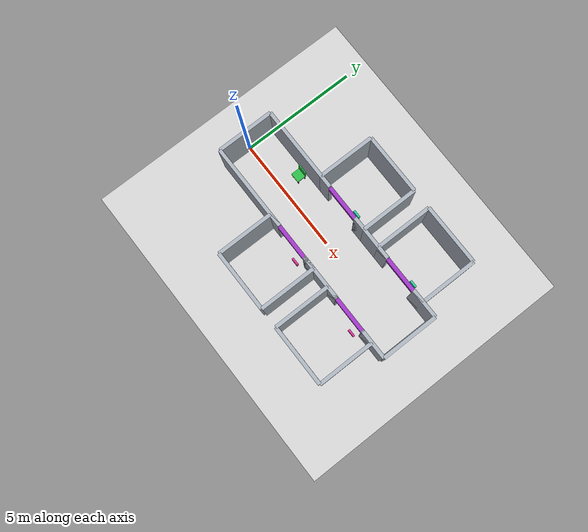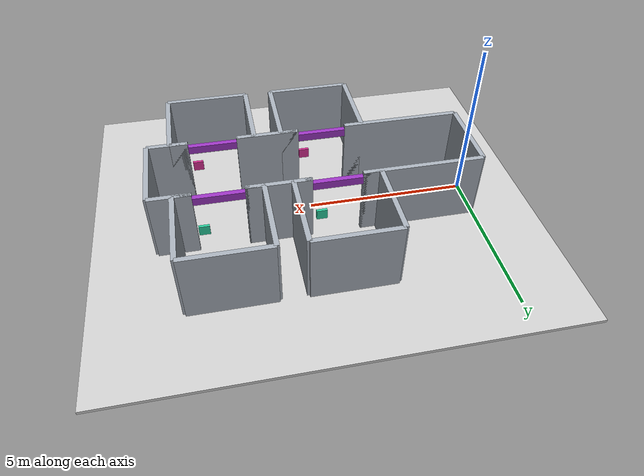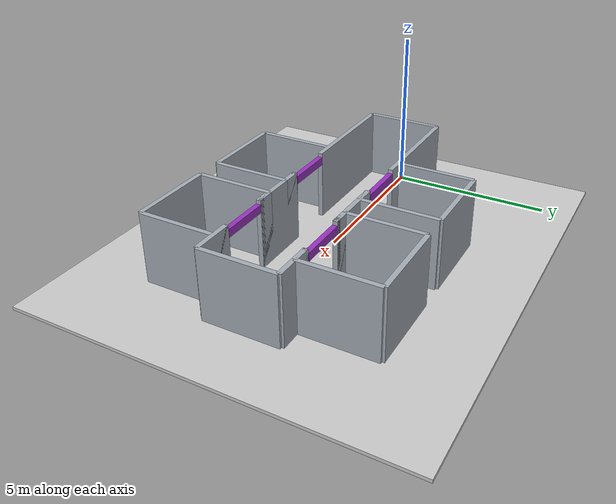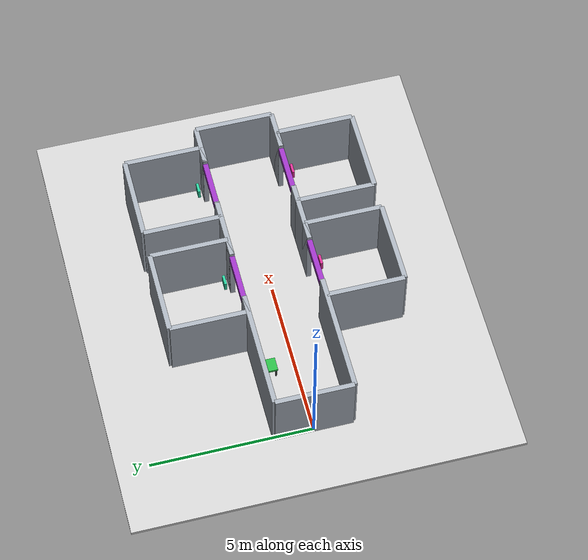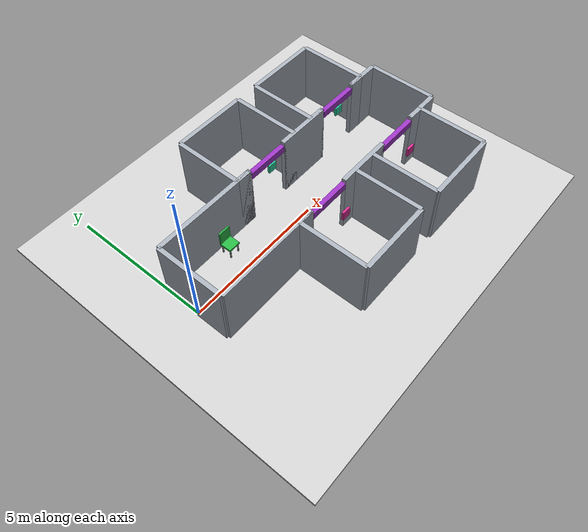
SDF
<sdf version="1.9">
  <world name="default">
    <plugin filename="gz-sim-physics-system" name="gz::sim::systems::Physics" />
    <plugin filename="gz-sim-user-commands-system" name="gz::sim::systems::UserCommands" />
    <plugin filename="gz-sim-sensors-system" name="gz::sim::systems::Sensors">
      <render_engine>ogre2</render_engine>
    </plugin>
    <plugin filename="gz-sim-imu-system" name="gz::sim::systems::Imu" />
    <plugin filename="gz-sim-contact-system" name="gz::sim::systems::Contact" />
    <physics name="3ms" type="ode">
      <max_step_size>0.003</max_step_size>
      <real_time_factor>1</real_time_factor>
    </physics>
    <light name="sun" type="directional">
      <pose>0 0 10 0 0 0</pose>
      <diffuse>0.9 0.9 0.9 1</diffuse>
      <direction>-0.5 0.1 -0.9</direction>
    </light>
    <model name="ground_plane">
      <static>true</static>
      <pose>4.95 0 -0.05 0 0 0</pose>
      <link name="body">
        <collision name="collision">
          <geometry>
            <box>
              <size>13.9 12 0.1</size>
            </box>
          </geometry>
        </collision>
        <visual name="visual">
          <geometry>
            <box>
              <size>13.9 12 0.1</size>
            </box>
          </geometry>
          <material>
            <ambient>0.8 0.8 0.8 1</ambient>
            <diffuse>0.8 0.8 0.8 1</diffuse>
          </material>
        </visual>
      </link>
    </model>
    <model name="start_wall">
      <static>true</static>
      <pose>0 0 1.1 0 0 0</pose>
      <link name="body">
        <collision name="collision">
          <geometry>
            <box>
              <size>0.15 2.4 2.2</size>
            </box>
          </geometry>
        </collision>
        <visual name="visual">
          <geometry>
            <box>
              <size>0.15 2.4 2.2</size>
            </box>
          </geometry>
          <material>
            <ambient>0.65 0.68 0.72 1</ambient>
            <diffuse>0.65 0.68 0.72 1</diffuse>
          </material>
        </visual>
      </link>
    </model>
    <model name="end_wall">
      <static>true</static>
      <pose>9.9 0 1.1 0 0 0</pose>
      <link name="body">
        <collision name="collision">
          <geometry>
            <box>
              <size>0.15 2.4 2.2</size>
            </box>
          </geometry>
        </collision>
        <visual name="visual">
          <geometry>
            <box>
              <size>0.15 2.4 2.2</size>
            </box>
          </geometry>
          <material>
            <ambient>0.65 0.68 0.72 1</ambient>
            <diffuse>0.65 0.68 0.72 1</diffuse>
          </material>
        </visual>
      </link>
    </model>
    <model name="hall_-1_1">
      <static>true</static>
      <pose>1.85 -1.2 1.1 0 0 0</pose>
      <link name="body">
        <collision name="collision">
          <geometry>
            <box>
              <size>3.7 0.15 2.2</size>
            </box>
          </geometry>
        </collision>
        <visual name="visual">
          <geometry>
            <box>
              <size>3.7 0.15 2.2</size>
            </box>
          </geometry>
          <material>
            <ambient>0.65 0.68 0.72 1</ambient>
            <diffuse>0.65 0.68 0.72 1</diffuse>
          </material>
        </visual>
      </link>
    </model>
    <model name="room_-1_1_-1">
      <static>true</static>
      <pose>3.1500000000000004 -2.4 1.1 0 0 0</pose>
      <link name="body">
        <collision name="collision">
          <geometry>
            <box>
              <size>0.15 2.4 2.2</size>
            </box>
          </geometry>
        </collision>
        <visual name="visual">
          <geometry>
            <box>
              <size>0.15 2.4 2.2</size>
            </box>
          </geometry>
          <material>
            <ambient>0.65 0.68 0.72 1</ambient>
            <diffuse>0.65 0.68 0.72 1</diffuse>
          </material>
        </visual>
      </link>
    </model>
    <model name="room_-1_1_1">
      <static>true</static>
      <pose>5.75 -2.4 1.1 0 0 0</pose>
      <link name="body">
        <collision name="collision">
          <geometry>
            <box>
              <size>0.15 2.4 2.2</size>
            </box>
          </geometry>
        </collision>
        <visual name="visual">
          <geometry>
            <box>
              <size>0.15 2.4 2.2</size>
            </box>
          </geometry>
          <material>
            <ambient>0.65 0.68 0.72 1</ambient>
            <diffuse>0.65 0.68 0.72 1</diffuse>
          </material>
        </visual>
      </link>
    </model>
    <model name="room_end_-1_1">
      <static>true</static>
      <pose>4.45 -3.5999999999999996 1.1 0 0 0</pose>
      <link name="body">
        <collision name="collision">
          <geometry>
            <box>
              <size>2.6 0.15 2.2</size>
            </box>
          </geometry>
        </collision>
        <visual name="visual">
          <geometry>
            <box>
              <size>2.6 0.15 2.2</size>
            </box>
          </geometry>
          <material>
            <ambient>0.65 0.68 0.72 1</ambient>
            <diffuse>0.65 0.68 0.72 1</diffuse>
          </material>
        </visual>
      </link>
    </model>
    <model name="jamb_-1_1_-1">
      <static>true</static>
      <pose>3.4250000000000003 -1.2 1.1 0 0 0</pose>
      <link name="body">
        <collision name="collision">
          <geometry>
            <box>
              <size>0.55 0.15 2.2</size>
            </box>
          </geometry>
        </collision>
        <visual name="visual">
          <geometry>
            <box>
              <size>0.55 0.15 2.2</size>
            </box>
          </geometry>
          <material>
            <ambient>0.65 0.68 0.72 1</ambient>
            <diffuse>0.65 0.68 0.72 1</diffuse>
          </material>
        </visual>
      </link>
    </model>
    <model name="jamb_-1_1_1">
      <static>true</static>
      <pose>5.475 -1.2 1.1 0 0 0</pose>
      <link name="body">
        <collision name="collision">
          <geometry>
            <box>
              <size>0.55 0.15 2.2</size>
            </box>
          </geometry>
        </collision>
        <visual name="visual">
          <geometry>
            <box>
              <size>0.55 0.15 2.2</size>
            </box>
          </geometry>
          <material>
            <ambient>0.65 0.68 0.72 1</ambient>
            <diffuse>0.65 0.68 0.72 1</diffuse>
          </material>
        </visual>
      </link>
    </model>
    <model name="hall_-1_2">
      <static>true</static>
      <pose>6.175000000000001 -1.2 1.1 0 0 0</pose>
      <link name="body">
        <collision name="collision">
          <geometry>
            <box>
              <size>1.9500000000000002 0.15 2.2</size>
            </box>
          </geometry>
        </collision>
        <visual name="visual">
          <geometry>
            <box>
              <size>1.9500000000000002 0.15 2.2</size>
            </box>
          </geometry>
          <material>
            <ambient>0.65 0.68 0.72 1</ambient>
            <diffuse>0.65 0.68 0.72 1</diffuse>
          </material>
        </visual>
      </link>
    </model>
    <model name="room_-1_2_-1">
      <static>true</static>
      <pose>6.6000000000000005 -2.4 1.1 0 0 0</pose>
      <link name="body">
        <collision name="collision">
          <geometry>
            <box>
              <size>0.15 2.4 2.2</size>
            </box>
          </geometry>
        </collision>
        <visual name="visual">
          <geometry>
            <box>
              <size>0.15 2.4 2.2</size>
            </box>
          </geometry>
          <material>
            <ambient>0.65 0.68 0.72 1</ambient>
            <diffuse>0.65 0.68 0.72 1</diffuse>
          </material>
        </visual>
      </link>
    </model>
    <model name="room_-1_2_1">
      <static>true</static>
      <pose>9.200000000000001 -2.4 1.1 0 0 0</pose>
      <link name="body">
        <collision name="collision">
          <geometry>
            <box>
              <size>0.15 2.4 2.2</size>
            </box>
          </geometry>
        </collision>
        <visual name="visual">
          <geometry>
            <box>
              <size>0.15 2.4 2.2</size>
            </box>
          </geometry>
          <material>
            <ambient>0.65 0.68 0.72 1</ambient>
            <diffuse>0.65 0.68 0.72 1</diffuse>
          </material>
        </visual>
      </link>
    </model>
    <model name="room_end_-1_2">
      <static>true</static>
      <pose>7.9 -3.5999999999999996 1.1 0 0 0</pose>
      <link name="body">
        <collision name="collision">
          <geometry>
            <box>
              <size>2.6 0.15 2.2</size>
            </box>
          </geometry>
        </collision>
        <visual name="visual">
          <geometry>
            <box>
              <size>2.6 0.15 2.2</size>
            </box>
          </geometry>
          <material>
            <ambient>0.65 0.68 0.72 1</ambient>
            <diffuse>0.65 0.68 0.72 1</diffuse>
          </material>
        </visual>
      </link>
    </model>
    <model name="jamb_-1_2_-1">
      <static>true</static>
      <pose>6.875 -1.2 1.1 0 0 0</pose>
      <link name="body">
        <collision name="collision">
          <geometry>
            <box>
              <size>0.55 0.15 2.2</size>
            </box>
          </geometry>
        </collision>
        <visual name="visual">
          <geometry>
            <box>
              <size>0.55 0.15 2.2</size>
            </box>
          </geometry>
          <material>
            <ambient>0.65 0.68 0.72 1</ambient>
            <diffuse>0.65 0.68 0.72 1</diffuse>
          </material>
        </visual>
      </link>
    </model>
    <model name="jamb_-1_2_1">
      <static>true</static>
      <pose>8.925 -1.2 1.1 0 0 0</pose>
      <link name="body">
        <collision name="collision">
          <geometry>
            <box>
              <size>0.55 0.15 2.2</size>
            </box>
          </geometry>
        </collision>
        <visual name="visual">
          <geometry>
            <box>
              <size>0.55 0.15 2.2</size>
            </box>
          </geometry>
          <material>
            <ambient>0.65 0.68 0.72 1</ambient>
            <diffuse>0.65 0.68 0.72 1</diffuse>
          </material>
        </visual>
      </link>
    </model>
    <model name="hall_end_-1">
      <static>true</static>
      <pose>9.275 -1.2 1.1 0 0 0</pose>
      <link name="body">
        <collision name="collision">
          <geometry>
            <box>
              <size>1.25 0.15 2.2</size>
            </box>
          </geometry>
        </collision>
        <visual name="visual">
          <geometry>
            <box>
              <size>1.25 0.15 2.2</size>
            </box>
          </geometry>
          <material>
            <ambient>0.65 0.68 0.72 1</ambient>
            <diffuse>0.65 0.68 0.72 1</diffuse>
          </material>
        </visual>
      </link>
    </model>
    <model name="hall_1_1">
      <static>true</static>
      <pose>1.85 1.2 1.1 0 0 0</pose>
      <link name="body">
        <collision name="collision">
          <geometry>
            <box>
              <size>3.7 0.15 2.2</size>
            </box>
          </geometry>
        </collision>
        <visual name="visual">
          <geometry>
            <box>
              <size>3.7 0.15 2.2</size>
            </box>
          </geometry>
          <material>
            <ambient>0.65 0.68 0.72 1</ambient>
            <diffuse>0.65 0.68 0.72 1</diffuse>
          </material>
        </visual>
      </link>
    </model>
    <model name="room_1_1_-1">
      <static>true</static>
      <pose>3.1500000000000004 2.4 1.1 0 0 0</pose>
      <link name="body">
        <collision name="collision">
          <geometry>
            <box>
              <size>0.15 2.4 2.2</size>
            </box>
          </geometry>
        </collision>
        <visual name="visual">
          <geometry>
            <box>
              <size>0.15 2.4 2.2</size>
            </box>
          </geometry>
          <material>
            <ambient>0.65 0.68 0.72 1</ambient>
            <diffuse>0.65 0.68 0.72 1</diffuse>
          </material>
        </visual>
      </link>
    </model>
    <model name="room_1_1_1">
      <static>true</static>
      <pose>5.75 2.4 1.1 0 0 0</pose>
      <link name="body">
        <collision name="collision">
          <geometry>
            <box>
              <size>0.15 2.4 2.2</size>
            </box>
          </geometry>
        </collision>
        <visual name="visual">
          <geometry>
            <box>
              <size>0.15 2.4 2.2</size>
            </box>
          </geometry>
          <material>
            <ambient>0.65 0.68 0.72 1</ambient>
            <diffuse>0.65 0.68 0.72 1</diffuse>
          </material>
        </visual>
      </link>
    </model>
    <model name="room_end_1_1">
      <static>true</static>
      <pose>4.45 3.5999999999999996 1.1 0 0 0</pose>
      <link name="body">
        <collision name="collision">
          <geometry>
            <box>
              <size>2.6 0.15 2.2</size>
            </box>
          </geometry>
        </collision>
        <visual name="visual">
          <geometry>
            <box>
              <size>2.6 0.15 2.2</size>
            </box>
          </geometry>
          <material>
            <ambient>0.65 0.68 0.72 1</ambient>
            <diffuse>0.65 0.68 0.72 1</diffuse>
          </material>
        </visual>
      </link>
    </model>
    <model name="jamb_1_1_-1">
      <static>true</static>
      <pose>3.4250000000000003 1.2 1.1 0 0 0</pose>
      <link name="body">
        <collision name="collision">
          <geometry>
            <box>
              <size>0.55 0.15 2.2</size>
            </box>
          </geometry>
        </collision>
        <visual name="visual">
          <geometry>
            <box>
              <size>0.55 0.15 2.2</size>
            </box>
          </geometry>
          <material>
            <ambient>0.65 0.68 0.72 1</ambient>
            <diffuse>0.65 0.68 0.72 1</diffuse>
          </material>
        </visual>
      </link>
    </model>
    <model name="jamb_1_1_1">
      <static>true</static>
      <pose>5.475 1.2 1.1 0 0 0</pose>
      <link name="body">
        <collision name="collision">
          <geometry>
            <box>
              <size>0.55 0.15 2.2</size>
            </box>
          </geometry>
        </collision>
        <visual name="visual">
          <geometry>
            <box>
              <size>0.55 0.15 2.2</size>
            </box>
          </geometry>
          <material>
            <ambient>0.65 0.68 0.72 1</ambient>
            <diffuse>0.65 0.68 0.72 1</diffuse>
          </material>
        </visual>
      </link>
    </model>
    <model name="hall_1_2">
      <static>true</static>
      <pose>6.175000000000001 1.2 1.1 0 0 0</pose>
      <link name="body">
        <collision name="collision">
          <geometry>
            <box>
              <size>1.9500000000000002 0.15 2.2</size>
            </box>
          </geometry>
        </collision>
        <visual name="visual">
          <geometry>
            <box>
              <size>1.9500000000000002 0.15 2.2</size>
            </box>
          </geometry>
          <material>
            <ambient>0.65 0.68 0.72 1</ambient>
            <diffuse>0.65 0.68 0.72 1</diffuse>
          </material>
        </visual>
      </link>
    </model>
    <model name="room_1_2_-1">
      <static>true</static>
      <pose>6.6000000000000005 2.4 1.1 0 0 0</pose>
      <link name="body">
        <collision name="collision">
          <geometry>
            <box>
              <size>0.15 2.4 2.2</size>
            </box>
          </geometry>
        </collision>
        <visual name="visual">
          <geometry>
            <box>
              <size>0.15 2.4 2.2</size>
            </box>
          </geometry>
          <material>
            <ambient>0.65 0.68 0.72 1</ambient>
            <diffuse>0.65 0.68 0.72 1</diffuse>
          </material>
        </visual>
      </link>
    </model>
    <model name="room_1_2_1">
      <static>true</static>
      <pose>9.200000000000001 2.4 1.1 0 0 0</pose>
      <link name="body">
        <collision name="collision">
          <geometry>
            <box>
              <size>0.15 2.4 2.2</size>
            </box>
          </geometry>
        </collision>
        <visual name="visual">
          <geometry>
            <box>
              <size>0.15 2.4 2.2</size>
            </box>
          </geometry>
          <material>
            <ambient>0.65 0.68 0.72 1</ambient>
            <diffuse>0.65 0.68 0.72 1</diffuse>
          </material>
        </visual>
      </link>
    </model>
    <model name="room_end_1_2">
      <static>true</static>
      <pose>7.9 3.5999999999999996 1.1 0 0 0</pose>
      <link name="body">
        <collision name="collision">
          <geometry>
            <box>
              <size>2.6 0.15 2.2</size>
            </box>
          </geometry>
        </collision>
        <visual name="visual">
          <geometry>
            <box>
              <size>2.6 0.15 2.2</size>
            </box>
          </geometry>
          <material>
            <ambient>0.65 0.68 0.72 1</ambient>
            <diffuse>0.65 0.68 0.72 1</diffuse>
          </material>
        </visual>
      </link>
    </model>
    <model name="jamb_1_2_-1">
      <static>true</static>
      <pose>6.875 1.2 1.1 0 0 0</pose>
      <link name="body">
        <collision name="collision">
          <geometry>
            <box>
              <size>0.55 0.15 2.2</size>
            </box>
          </geometry>
        </collision>
        <visual name="visual">
          <geometry>
            <box>
              <size>0.55 0.15 2.2</size>
            </box>
          </geometry>
          <material>
            <ambient>0.65 0.68 0.72 1</ambient>
            <diffuse>0.65 0.68 0.72 1</diffuse>
          </material>
        </visual>
      </link>
    </model>
    <model name="jamb_1_2_1">
      <static>true</static>
      <pose>8.925 1.2 1.1 0 0 0</pose>
      <link name="body">
        <collision name="collision">
          <geometry>
            <box>
              <size>0.55 0.15 2.2</size>
            </box>
          </geometry>
        </collision>
        <visual name="visual">
          <geometry>
            <box>
              <size>0.55 0.15 2.2</size>
            </box>
          </geometry>
          <material>
            <ambient>0.65 0.68 0.72 1</ambient>
            <diffuse>0.65 0.68 0.72 1</diffuse>
          </material>
        </visual>
      </link>
    </model>
    <model name="hall_end_1">
      <static>true</static>
      <pose>9.275 1.2 1.1 0 0 0</pose>
      <link name="body">
        <collision name="collision">
          <geometry>
            <box>
              <size>1.25 0.15 2.2</size>
            </box>
          </geometry>
        </collision>
        <visual name="visual">
          <geometry>
            <box>
              <size>1.25 0.15 2.2</size>
            </box>
          </geometry>
          <material>
            <ambient>0.65 0.68 0.72 1</ambient>
            <diffuse>0.65 0.68 0.72 1</diffuse>
          </material>
        </visual>
      </link>
    </model>
    <model name="chair_seat">
      <static>true</static>
      <pose>2.2 0.7999999999999999 0.4 0 0 0</pose>
      <link name="body">
        <collision name="collision">
          <geometry>
            <box>
              <size>0.42 0.42 0.08</size>
            </box>
          </geometry>
        </collision>
        <visual name="visual">
          <geometry>
            <box>
              <size>0.42 0.42 0.08</size>
            </box>
          </geometry>
          <material>
            <ambient>0.16 0.71 0.27 1</ambient>
            <diffuse>0.16 0.71 0.27 1</diffuse>
          </material>
        </visual>
      </link>
    </model>
    <model name="chair_back">
      <static>true</static>
      <pose>2.2 0.99 0.67 0 0 0</pose>
      <link name="body">
        <collision name="collision">
          <geometry>
            <box>
              <size>0.42 0.05 0.5</size>
            </box>
          </geometry>
        </collision>
        <visual name="visual">
          <geometry>
            <box>
              <size>0.42 0.05 0.5</size>
            </box>
          </geometry>
          <material>
            <ambient>0.16 0.71 0.27 1</ambient>
            <diffuse>0.16 0.71 0.27 1</diffuse>
          </material>
        </visual>
      </link>
    </model>
    <model name="chair_leg_-0.16_-0.16">
      <static>true</static>
      <pose>2.04 0.6399999999999999 0.19 0 0 0</pose>
      <link name="body">
        <collision name="collision">
          <geometry>
            <box>
              <size>0.04 0.04 0.38</size>
            </box>
          </geometry>
        </collision>
        <visual name="visual">
          <geometry>
            <box>
              <size>0.04 0.04 0.38</size>
            </box>
          </geometry>
          <material>
            <ambient>0.2 0.2 0.2 1</ambient>
            <diffuse>0.2 0.2 0.2 1</diffuse>
          </material>
        </visual>
      </link>
    </model>
    <model name="chair_leg_-0.16_0.16">
      <static>true</static>
      <pose>2.04 0.96 0.19 0 0 0</pose>
      <link name="body">
        <collision name="collision">
          <geometry>
            <box>
              <size>0.04 0.04 0.38</size>
            </box>
          </geometry>
        </collision>
        <visual name="visual">
          <geometry>
            <box>
              <size>0.04 0.04 0.38</size>
            </box>
          </geometry>
          <material>
            <ambient>0.2 0.2 0.2 1</ambient>
            <diffuse>0.2 0.2 0.2 1</diffuse>
          </material>
        </visual>
      </link>
    </model>
    <model name="chair_leg_0.16_-0.16">
      <static>true</static>
      <pose>2.3600000000000003 0.6399999999999999 0.19 0 0 0</pose>
      <link name="body">
        <collision name="collision">
          <geometry>
            <box>
              <size>0.04 0.04 0.38</size>
            </box>
          </geometry>
        </collision>
        <visual name="visual">
          <geometry>
            <box>
              <size>0.04 0.04 0.38</size>
            </box>
          </geometry>
          <material>
            <ambient>0.2 0.2 0.2 1</ambient>
            <diffuse>0.2 0.2 0.2 1</diffuse>
          </material>
        </visual>
      </link>
    </model>
    <model name="chair_leg_0.16_0.16">
      <static>true</static>
      <pose>2.3600000000000003 0.96 0.19 0 0 0</pose>
      <link name="body">
        <collision name="collision">
          <geometry>
            <box>
              <size>0.04 0.04 0.38</size>
            </box>
          </geometry>
        </collision>
        <visual name="visual">
          <geometry>
            <box>
              <size>0.04 0.04 0.38</size>
            </box>
          </geometry>
          <material>
            <ambient>0.2 0.2 0.2 1</ambient>
            <diffuse>0.2 0.2 0.2 1</diffuse>
          </material>
        </visual>
      </link>
    </model>
    <model name="r3geo_base_r007_right_1_lintel">
      <static>true</static>
      <pose>4.45 -1.2 1.95 0 0 0</pose>
      <link name="body">
        <collision name="collision">
          <geometry>
            <box>
              <size>1.5 0.16 0.25</size>
            </box>
          </geometry>
        </collision>
        <visual name="visual">
          <geometry>
            <box>
              <size>1.5 0.16 0.25</size>
            </box>
          </geometry>
          <material>
            <ambient>0.6 0.2 0.75 1</ambient>
            <diffuse>0.6 0.2 0.75 1</diffuse>
          </material>
        </visual>
      </link>
    </model>
    <model name="r3geo_base_r007_right_1_entrance_sign">
      <static>true</static>
      <pose>4.98 -1.5 1.05 0 0 0</pose>
      <link name="body">
        <visual name="visual">
          <geometry>
            <box>
              <size>0.32 0.08 0.32</size>
            </box>
          </geometry>
          <material>
            <ambient>0.84 0.18 0.57 1</ambient>
            <diffuse>0.84 0.18 0.57 1</diffuse>
          </material>
        </visual>
      </link>
    </model>
    <model name="r3geo_base_r007_right_2_lintel">
      <static>true</static>
      <pose>7.9 -1.2 1.95 0 0 0</pose>
      <link name="body">
        <collision name="collision">
          <geometry>
            <box>
              <size>1.5 0.16 0.25</size>
            </box>
          </geometry>
        </collision>
        <visual name="visual">
          <geometry>
            <box>
              <size>1.5 0.16 0.25</size>
            </box>
          </geometry>
          <material>
            <ambient>0.6 0.2 0.75 1</ambient>
            <diffuse>0.6 0.2 0.75 1</diffuse>
          </material>
        </visual>
      </link>
    </model>
    <model name="r3geo_base_r007_right_2_entrance_sign">
      <static>true</static>
      <pose>8.43 -1.5 1.05 0 0 0</pose>
      <link name="body">
        <visual name="visual">
          <geometry>
            <box>
              <size>0.32 0.08 0.32</size>
            </box>
          </geometry>
          <material>
            <ambient>0.84 0.18 0.57 1</ambient>
            <diffuse>0.84 0.18 0.57 1</diffuse>
          </material>
        </visual>
      </link>
    </model>
    <model name="r3geo_base_r007_left_1_lintel">
      <static>true</static>
      <pose>4.45 1.2 1.95 0 0 0</pose>
      <link name="body">
        <collision name="collision">
          <geometry>
            <box>
              <size>1.5 0.16 0.25</size>
            </box>
          </geometry>
        </collision>
        <visual name="visual">
          <geometry>
            <box>
              <size>1.5 0.16 0.25</size>
            </box>
          </geometry>
          <material>
            <ambient>0.6 0.2 0.75 1</ambient>
            <diffuse>0.6 0.2 0.75 1</diffuse>
          </material>
        </visual>
      </link>
    </model>
    <model name="r3geo_base_r007_left_1_entrance_sign">
      <static>true</static>
      <pose>4.98 1.5 1.05 0 0 0</pose>
      <link name="body">
        <visual name="visual">
          <geometry>
            <box>
              <size>0.32 0.08 0.32</size>
            </box>
          </geometry>
          <material>
            <ambient>0.16 0.8 0.61 1</ambient>
            <diffuse>0.16 0.8 0.61 1</diffuse>
          </material>
        </visual>
      </link>
    </model>
    <model name="r3geo_base_r007_left_2_lintel">
      <static>true</static>
      <pose>7.9 1.2 1.95 0 0 0</pose>
      <link name="body">
        <collision name="collision">
          <geometry>
            <box>
              <size>1.5 0.16 0.25</size>
            </box>
          </geometry>
        </collision>
        <visual name="visual">
          <geometry>
            <box>
              <size>1.5 0.16 0.25</size>
            </box>
          </geometry>
          <material>
            <ambient>0.6 0.2 0.75 1</ambient>
            <diffuse>0.6 0.2 0.75 1</diffuse>
          </material>
        </visual>
      </link>
    </model>
    <model name="r3geo_base_r007_left_2_entrance_sign">
      <static>true</static>
      <pose>8.43 1.5 1.05 0 0 0</pose>
      <link name="body">
        <visual name="visual">
          <geometry>
            <box>
              <size>0.32 0.08 0.32</size>
            </box>
          </geometry>
          <material>
            <ambient>0.16 0.8 0.61 1</ambient>
            <diffuse>0.16 0.8 0.61 1</diffuse>
          </material>
        </visual>
      </link>
    </model>
  </world>
</sdf>
